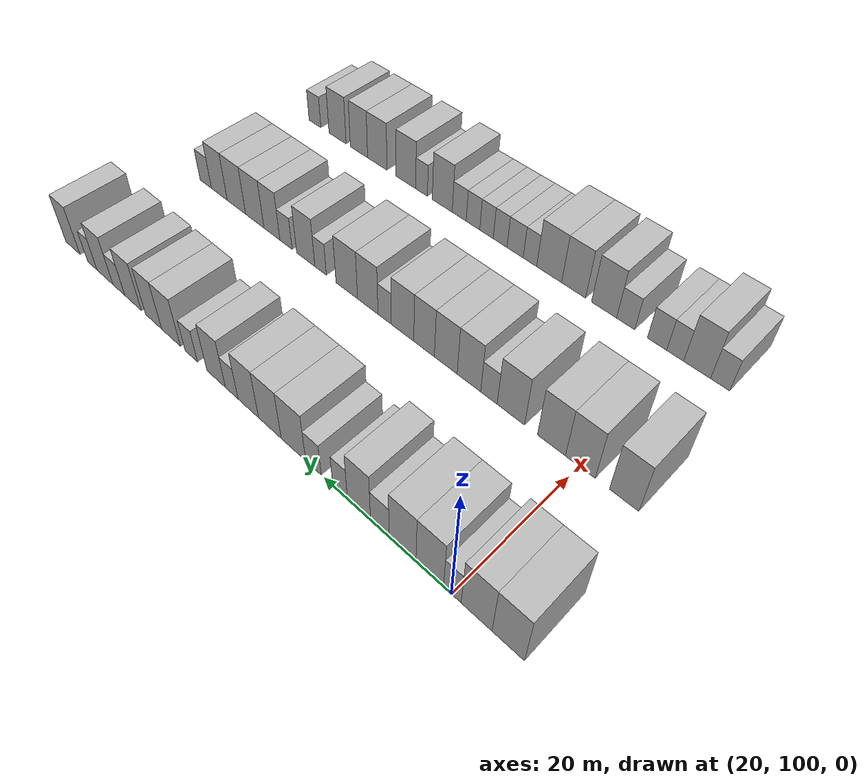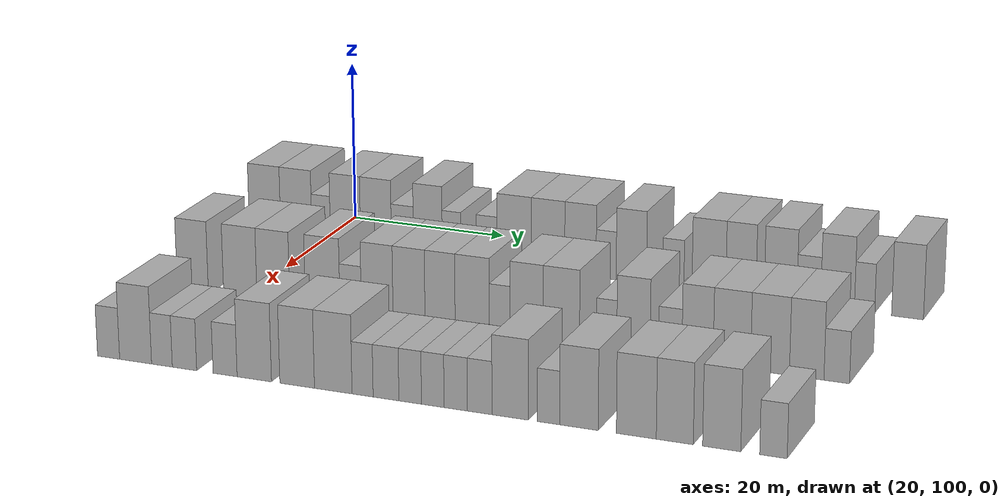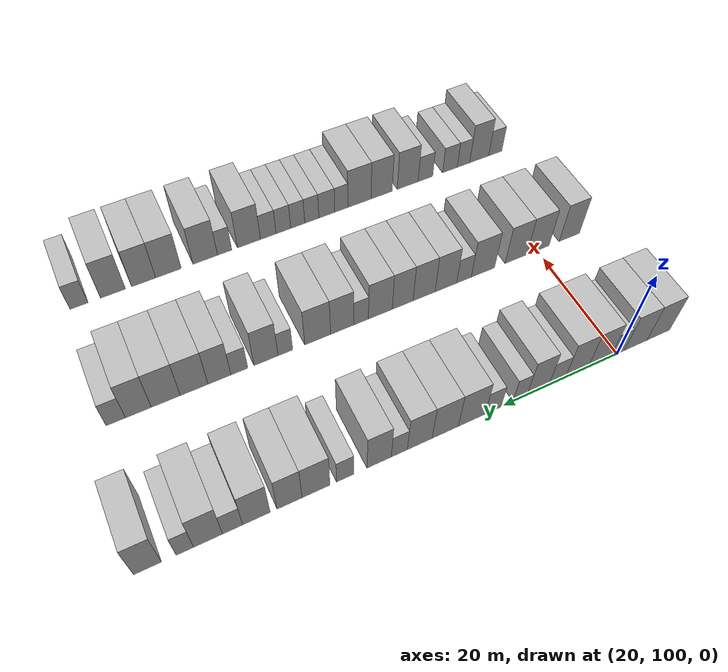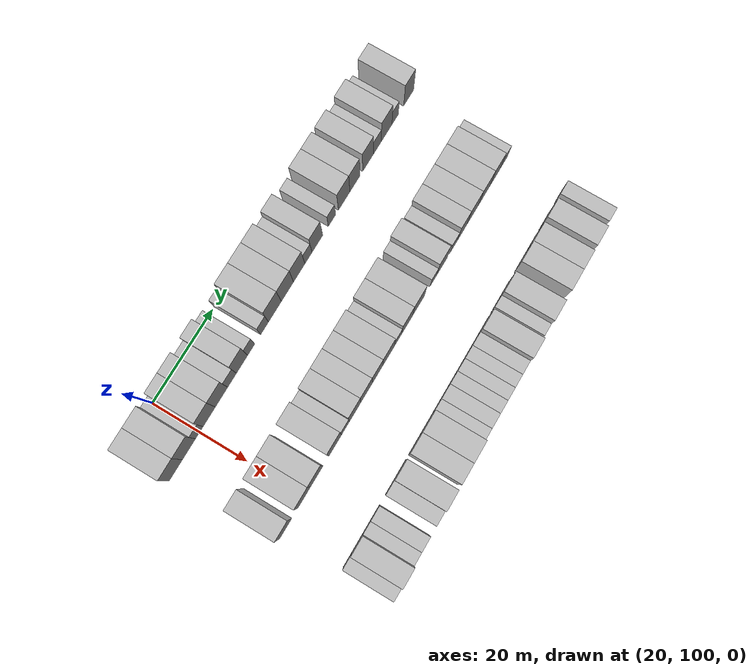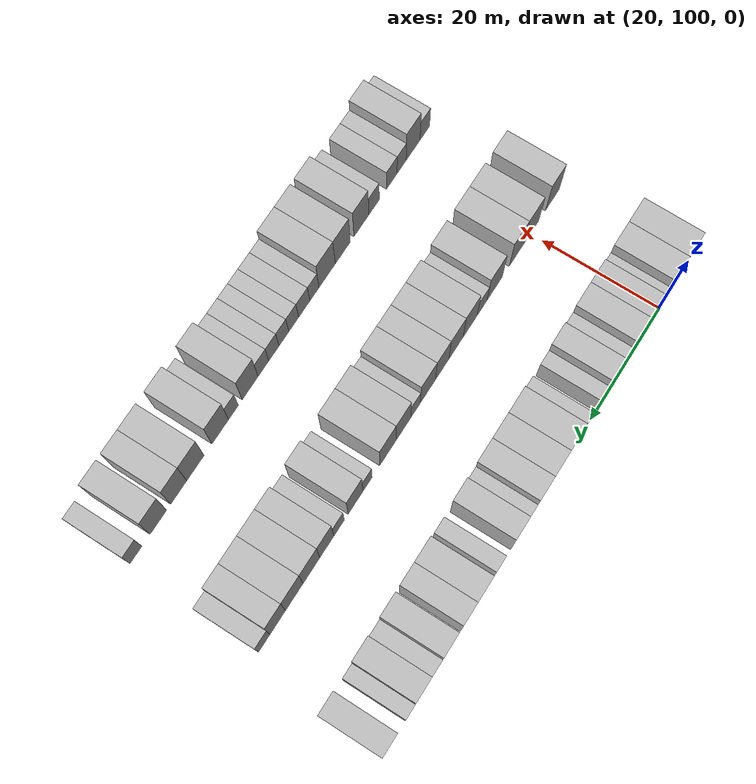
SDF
<sdf version="1.6">
 <world name="default">
  <model name="building_82">
   <static>1</static>
   <pose>25.0000 92.2709 0 0.000000 0.000000 0.000000</pose>
   <link name="link">
    <pose>0 0 4.50 0 0 0</pose>
    <collision name="collision"><geometry><box><size>10.0000 4.3029 9.0000</size></box></geometry></collision>
    <visual name="visual">
     <cast_shadows>0</cast_shadows>
     <geometry><box><size>10.0000 4.3029 9.0000</size></box></geometry>
     <material>
      <script>
       <uri>model://HANNAS_wall/materials/scripts</uri>
       <uri>model://HANNAS_wall/materials/textures</uri>
       <name>vrc/HANNAS_wall</name>
      </script>
     </material>
    </visual>
   </link>
  </model>
  <model name="building_83">
   <static>1</static>
   <pose>25.0000 96.5483 0 0.000000 0.000000 0.000000</pose>
   <link name="link">
    <pose>0 0 4.50 0 0 0</pose>
    <collision name="collision"><geometry><box><size>10.0000 4.2518 9.0000</size></box></geometry></collision>
    <visual name="visual">
     <cast_shadows>0</cast_shadows>
     <geometry><box><size>10.0000 4.2518 9.0000</size></box></geometry>
     <material>
      <script>
       <uri>model://HANNAS_wall/materials/scripts</uri>
       <uri>model://HANNAS_wall/materials/textures</uri>
       <name>vrc/HANNAS_wall</name>
      </script>
     </material>
    </visual>
   </link>
  </model>
  <model name="building_84">
   <static>1</static>
   <pose>25.0000 99.9301 0 0.000000 0.000000 0.000000</pose>
   <link name="link">
    <pose>0 0 3.00 0 0 0</pose>
    <collision name="collision"><geometry><box><size>10.0000 2.5117 6.0000</size></box></geometry></collision>
    <visual name="visual">
     <cast_shadows>0</cast_shadows>
     <geometry><box><size>10.0000 2.5117 6.0000</size></box></geometry>
     <material>
      <script>
       <uri>model://HANNAS_wall/materials/scripts</uri>
       <uri>model://HANNAS_wall/materials/textures</uri>
       <name>vrc/HANNAS_wall</name>
      </script>
     </material>
    </visual>
   </link>
  </model>
  <model name="building_85">
   <static>1</static>
   <pose>25.0000 103.2158 0 0.000000 0.000000 0.000000</pose>
   <link name="link">
    <pose>0 0 4.50 0 0 0</pose>
    <collision name="collision"><geometry><box><size>10.0000 4.0597 9.0000</size></box></geometry></collision>
    <visual name="visual">
     <cast_shadows>0</cast_shadows>
     <geometry><box><size>10.0000 4.0597 9.0000</size></box></geometry>
     <material>
      <script>
       <uri>model://HANNAS_wall/materials/scripts</uri>
       <uri>model://HANNAS_wall/materials/textures</uri>
       <name>vrc/HANNAS_wall</name>
      </script>
     </material>
    </visual>
   </link>
  </model>
  <model name="building_86">
   <static>1</static>
   <pose>25.0000 107.3043 0 0.000000 0.000000 0.000000</pose>
   <link name="link">
    <pose>0 0 4.50 0 0 0</pose>
    <collision name="collision"><geometry><box><size>10.0000 4.1173 9.0000</size></box></geometry></collision>
    <visual name="visual">
     <cast_shadows>0</cast_shadows>
     <geometry><box><size>10.0000 4.1173 9.0000</size></box></geometry>
     <material>
      <script>
       <uri>model://HANNAS_wall/materials/scripts</uri>
       <uri>model://HANNAS_wall/materials/textures</uri>
       <name>vrc/HANNAS_wall</name>
      </script>
     </material>
    </visual>
   </link>
  </model>
  <model name="building_87">
   <static>1</static>
   <pose>25.0000 110.8285 0 0.000000 0.000000 0.000000</pose>
   <link name="link">
    <pose>0 0 3.00 0 0 0</pose>
    <collision name="collision"><geometry><box><size>10.0000 2.9312 6.0000</size></box></geometry></collision>
    <visual name="visual">
     <cast_shadows>0</cast_shadows>
     <geometry><box><size>10.0000 2.9312 6.0000</size></box></geometry>
     <material>
      <script>
       <uri>model://HANNAS_wall/materials/scripts</uri>
       <uri>model://HANNAS_wall/materials/textures</uri>
       <name>vrc/HANNAS_wall</name>
      </script>
     </material>
    </visual>
   </link>
  </model>
  <model name="building_88">
   <static>1</static>
   <pose>25.0000 114.1880 0 0.000000 0.000000 0.000000</pose>
   <link name="link">
    <pose>0 0 4.50 0 0 0</pose>
    <collision name="collision"><geometry><box><size>10.0000 3.7878 9.0000</size></box></geometry></collision>
    <visual name="visual">
     <cast_shadows>0</cast_shadows>
     <geometry><box><size>10.0000 3.7878 9.0000</size></box></geometry>
     <material>
      <script>
       <uri>model://HANNAS_wall/materials/scripts</uri>
       <uri>model://HANNAS_wall/materials/textures</uri>
       <name>vrc/HANNAS_wall</name>
      </script>
     </material>
    </visual>
   </link>
  </model>
  <model name="building_89">
   <static>1</static>
   <pose>25.0000 117.3013 0 0.000000 0.000000 0.000000</pose>
   <link name="link">
    <pose>0 0 3.00 0 0 0</pose>
    <collision name="collision"><geometry><box><size>10.0000 2.4388 6.0000</size></box></geometry></collision>
    <visual name="visual">
     <cast_shadows>0</cast_shadows>
     <geometry><box><size>10.0000 2.4388 6.0000</size></box></geometry>
     <material>
      <script>
       <uri>model://HANNAS_wall/materials/scripts</uri>
       <uri>model://HANNAS_wall/materials/textures</uri>
       <name>vrc/HANNAS_wall</name>
      </script>
     </material>
    </visual>
   </link>
  </model>
  <model name="building_90">
   <static>1</static>
   <pose>25.0000 121.8705 0 0.000000 0.000000 0.000000</pose>
   <link name="link">
    <pose>0 0 3.00 0 0 0</pose>
    <collision name="collision"><geometry><box><size>10.0000 2.6997 6.0000</size></box></geometry></collision>
    <visual name="visual">
     <cast_shadows>0</cast_shadows>
     <geometry><box><size>10.0000 2.6997 6.0000</size></box></geometry>
     <material>
      <script>
       <uri>model://HANNAS_wall/materials/scripts</uri>
       <uri>model://HANNAS_wall/materials/textures</uri>
       <name>vrc/HANNAS_wall</name>
      </script>
     </material>
    </visual>
   </link>
  </model>
  <model name="building_91">
   <static>1</static>
   <pose>25.0000 125.4389 0 0.000000 0.000000 0.000000</pose>
   <link name="link">
    <pose>0 0 4.50 0 0 0</pose>
    <collision name="collision"><geometry><box><size>10.0000 4.4371 9.0000</size></box></geometry></collision>
    <visual name="visual">
     <cast_shadows>0</cast_shadows>
     <geometry><box><size>10.0000 4.4371 9.0000</size></box></geometry>
     <material>
      <script>
       <uri>model://HANNAS_wall/materials/scripts</uri>
       <uri>model://HANNAS_wall/materials/textures</uri>
       <name>vrc/HANNAS_wall</name>
      </script>
     </material>
    </visual>
   </link>
  </model>
  <model name="building_92">
   <static>1</static>
   <pose>25.0000 129.7888 0 0.000000 0.000000 0.000000</pose>
   <link name="link">
    <pose>0 0 4.50 0 0 0</pose>
    <collision name="collision"><geometry><box><size>10.0000 4.2628 9.0000</size></box></geometry></collision>
    <visual name="visual">
     <cast_shadows>0</cast_shadows>
     <geometry><box><size>10.0000 4.2628 9.0000</size></box></geometry>
     <material>
      <script>
       <uri>model://HANNAS_wall/materials/scripts</uri>
       <uri>model://HANNAS_wall/materials/textures</uri>
       <name>vrc/HANNAS_wall</name>
      </script>
     </material>
    </visual>
   </link>
  </model>
  <model name="building_93">
   <static>1</static>
   <pose>25.0000 133.9103 0 0.000000 0.000000 0.000000</pose>
   <link name="link">
    <pose>0 0 4.50 0 0 0</pose>
    <collision name="collision"><geometry><box><size>10.0000 3.9802 9.0000</size></box></geometry></collision>
    <visual name="visual">
     <cast_shadows>0</cast_shadows>
     <geometry><box><size>10.0000 3.9802 9.0000</size></box></geometry>
     <material>
      <script>
       <uri>model://HANNAS_wall/materials/scripts</uri>
       <uri>model://HANNAS_wall/materials/textures</uri>
       <name>vrc/HANNAS_wall</name>
      </script>
     </material>
    </visual>
   </link>
  </model>
  <model name="building_94">
   <static>1</static>
   <pose>25.0000 137.1677 0 0.000000 0.000000 0.000000</pose>
   <link name="link">
    <pose>0 0 3.00 0 0 0</pose>
    <collision name="collision"><geometry><box><size>10.0000 2.5347 6.0000</size></box></geometry></collision>
    <visual name="visual">
     <cast_shadows>0</cast_shadows>
     <geometry><box><size>10.0000 2.5347 6.0000</size></box></geometry>
     <material>
      <script>
       <uri>model://HANNAS_wall/materials/scripts</uri>
       <uri>model://HANNAS_wall/materials/textures</uri>
       <name>vrc/HANNAS_wall</name>
      </script>
     </material>
    </visual>
   </link>
  </model>
  <model name="building_95">
   <static>1</static>
   <pose>25.0000 140.3311 0 0.000000 0.000000 0.000000</pose>
   <link name="link">
    <pose>0 0 4.50 0 0 0</pose>
    <collision name="collision"><geometry><box><size>10.0000 3.7921 9.0000</size></box></geometry></collision>
    <visual name="visual">
     <cast_shadows>0</cast_shadows>
     <geometry><box><size>10.0000 3.7921 9.0000</size></box></geometry>
     <material>
      <script>
       <uri>model://HANNAS_wall/materials/scripts</uri>
       <uri>model://HANNAS_wall/materials/textures</uri>
       <name>vrc/HANNAS_wall</name>
      </script>
     </material>
    </visual>
   </link>
  </model>
  <model name="building_96">
   <static>1</static>
   <pose>25.0000 145.5529 0 0.000000 0.000000 0.000000</pose>
   <link name="link">
    <pose>0 0 3.00 0 0 0</pose>
    <collision name="collision"><geometry><box><size>10.0000 2.6515 6.0000</size></box></geometry></collision>
    <visual name="visual">
     <cast_shadows>0</cast_shadows>
     <geometry><box><size>10.0000 2.6515 6.0000</size></box></geometry>
     <material>
      <script>
       <uri>model://HANNAS_wall/materials/scripts</uri>
       <uri>model://HANNAS_wall/materials/textures</uri>
       <name>vrc/HANNAS_wall</name>
      </script>
     </material>
    </visual>
   </link>
  </model>
  <model name="building_97">
   <static>1</static>
   <pose>25.0000 149.9523 0 0.000000 0.000000 0.000000</pose>
   <link name="link">
    <pose>0 0 4.50 0 0 0</pose>
    <collision name="collision"><geometry><box><size>10.0000 4.1472 9.0000</size></box></geometry></collision>
    <visual name="visual">
     <cast_shadows>0</cast_shadows>
     <geometry><box><size>10.0000 4.1472 9.0000</size></box></geometry>
     <material>
      <script>
       <uri>model://HANNAS_wall/materials/scripts</uri>
       <uri>model://HANNAS_wall/materials/textures</uri>
       <name>vrc/HANNAS_wall</name>
      </script>
     </material>
    </visual>
   </link>
  </model>
  <model name="building_98">
   <static>1</static>
   <pose>25.0000 153.8676 0 0.000000 0.000000 0.000000</pose>
   <link name="link">
    <pose>0 0 4.50 0 0 0</pose>
    <collision name="collision"><geometry><box><size>10.0000 3.6835 9.0000</size></box></geometry></collision>
    <visual name="visual">
     <cast_shadows>0</cast_shadows>
     <geometry><box><size>10.0000 3.6835 9.0000</size></box></geometry>
     <material>
      <script>
       <uri>model://HANNAS_wall/materials/scripts</uri>
       <uri>model://HANNAS_wall/materials/textures</uri>
       <name>vrc/HANNAS_wall</name>
      </script>
     </material>
    </visual>
   </link>
  </model>
  <model name="building_99">
   <static>1</static>
   <pose>25.0000 158.6853 0 0.000000 0.000000 0.000000</pose>
   <link name="link">
    <pose>0 0 4.50 0 0 0</pose>
    <collision name="collision"><geometry><box><size>10.0000 3.9519 9.0000</size></box></geometry></collision>
    <visual name="visual">
     <cast_shadows>0</cast_shadows>
     <geometry><box><size>10.0000 3.9519 9.0000</size></box></geometry>
     <material>
      <script>
       <uri>model://HANNAS_wall/materials/scripts</uri>
       <uri>model://HANNAS_wall/materials/textures</uri>
       <name>vrc/HANNAS_wall</name>
      </script>
     </material>
    </visual>
   </link>
  </model>
  <model name="building_100">
   <static>1</static>
   <pose>25.0000 162.0888 0 0.000000 0.000000 0.000000</pose>
   <link name="link">
    <pose>0 0 3.00 0 0 0</pose>
    <collision name="collision"><geometry><box><size>10.0000 2.8550 6.0000</size></box></geometry></collision>
    <visual name="visual">
     <cast_shadows>0</cast_shadows>
     <geometry><box><size>10.0000 2.8550 6.0000</size></box></geometry>
     <material>
      <script>
       <uri>model://HANNAS_wall/materials/scripts</uri>
       <uri>model://HANNAS_wall/materials/textures</uri>
       <name>vrc/HANNAS_wall</name>
      </script>
     </material>
    </visual>
   </link>
  </model>
  <model name="building_101">
   <static>1</static>
   <pose>25.0000 165.5274 0 0.000000 0.000000 0.000000</pose>
   <link name="link">
    <pose>0 0 4.50 0 0 0</pose>
    <collision name="collision"><geometry><box><size>10.0000 4.0222 9.0000</size></box></geometry></collision>
    <visual name="visual">
     <cast_shadows>0</cast_shadows>
     <geometry><box><size>10.0000 4.0222 9.0000</size></box></geometry>
     <material>
      <script>
       <uri>model://HANNAS_wall/materials/scripts</uri>
       <uri>model://HANNAS_wall/materials/textures</uri>
       <name>vrc/HANNAS_wall</name>
      </script>
     </material>
    </visual>
   </link>
  </model>
  <model name="building_102">
   <static>1</static>
   <pose>25.0000 168.7396 0 0.000000 0.000000 0.000000</pose>
   <link name="link">
    <pose>0 0 3.00 0 0 0</pose>
    <collision name="collision"><geometry><box><size>10.0000 2.4022 6.0000</size></box></geometry></collision>
    <visual name="visual">
     <cast_shadows>0</cast_shadows>
     <geometry><box><size>10.0000 2.4022 6.0000</size></box></geometry>
     <material>
      <script>
       <uri>model://HANNAS_wall/materials/scripts</uri>
       <uri>model://HANNAS_wall/materials/textures</uri>
       <name>vrc/HANNAS_wall</name>
      </script>
     </material>
    </visual>
   </link>
  </model>
  <model name="building_103">
   <static>1</static>
   <pose>25.0000 173.8094 0 0.000000 0.000000 0.000000</pose>
   <link name="link">
    <pose>0 0 4.50 0 0 0</pose>
    <collision name="collision"><geometry><box><size>10.0000 3.7375 9.0000</size></box></geometry></collision>
    <visual name="visual">
     <cast_shadows>0</cast_shadows>
     <geometry><box><size>10.0000 3.7375 9.0000</size></box></geometry>
     <material>
      <script>
       <uri>model://HANNAS_wall/materials/scripts</uri>
       <uri>model://HANNAS_wall/materials/textures</uri>
       <name>vrc/HANNAS_wall</name>
      </script>
     </material>
    </visual>
   </link>
  </model>
  <model name="building_204">
   <static>1</static>
   <pose>47.0000 93.6602 0 0.000000 0.000000 0.000000</pose>
   <link name="link">
    <pose>0 0 4.50 0 0 0</pose>
    <collision name="collision"><geometry><box><size>10.0000 4.0548 9.0000</size></box></geometry></collision>
    <visual name="visual">
     <cast_shadows>0</cast_shadows>
     <geometry><box><size>10.0000 4.0548 9.0000</size></box></geometry>
     <material>
      <script>
       <uri>model://HANNAS_wall/materials/scripts</uri>
       <uri>model://HANNAS_wall/materials/textures</uri>
       <name>vrc/HANNAS_wall</name>
      </script>
     </material>
    </visual>
   </link>
  </model>
  <model name="building_205">
   <static>1</static>
   <pose>47.0000 99.8493 0 0.000000 0.000000 0.000000</pose>
   <link name="link">
    <pose>0 0 4.50 0 0 0</pose>
    <collision name="collision"><geometry><box><size>10.0000 4.3233 9.0000</size></box></geometry></collision>
    <visual name="visual">
     <cast_shadows>0</cast_shadows>
     <geometry><box><size>10.0000 4.3233 9.0000</size></box></geometry>
     <material>
      <script>
       <uri>model://HANNAS_wall/materials/scripts</uri>
       <uri>model://HANNAS_wall/materials/textures</uri>
       <name>vrc/HANNAS_wall</name>
      </script>
     </material>
    </visual>
   </link>
  </model>
  <model name="building_206">
   <static>1</static>
   <pose>47.0000 104.1126 0 0.000000 0.000000 0.000000</pose>
   <link name="link">
    <pose>0 0 4.50 0 0 0</pose>
    <collision name="collision"><geometry><box><size>10.0000 4.2034 9.0000</size></box></geometry></collision>
    <visual name="visual">
     <cast_shadows>0</cast_shadows>
     <geometry><box><size>10.0000 4.2034 9.0000</size></box></geometry>
     <material>
      <script>
       <uri>model://HANNAS_wall/materials/scripts</uri>
       <uri>model://HANNAS_wall/materials/textures</uri>
       <name>vrc/HANNAS_wall</name>
      </script>
     </material>
    </visual>
   </link>
  </model>
  <model name="building_207">
   <static>1</static>
   <pose>47.0000 110.4031 0 0.000000 0.000000 0.000000</pose>
   <link name="link">
    <pose>0 0 4.50 0 0 0</pose>
    <collision name="collision"><geometry><box><size>10.0000 4.3776 9.0000</size></box></geometry></collision>
    <visual name="visual">
     <cast_shadows>0</cast_shadows>
     <geometry><box><size>10.0000 4.3776 9.0000</size></box></geometry>
     <material>
      <script>
       <uri>model://HANNAS_wall/materials/scripts</uri>
       <uri>model://HANNAS_wall/materials/textures</uri>
       <name>vrc/HANNAS_wall</name>
      </script>
     </material>
    </visual>
   </link>
  </model>
  <model name="building_208">
   <static>1</static>
   <pose>47.0000 113.9424 0 0.000000 0.000000 0.000000</pose>
   <link name="link">
    <pose>0 0 3.00 0 0 0</pose>
    <collision name="collision"><geometry><box><size>10.0000 2.7010 6.0000</size></box></geometry></collision>
    <visual name="visual">
     <cast_shadows>0</cast_shadows>
     <geometry><box><size>10.0000 2.7010 6.0000</size></box></geometry>
     <material>
      <script>
       <uri>model://HANNAS_wall/materials/scripts</uri>
       <uri>model://HANNAS_wall/materials/textures</uri>
       <name>vrc/HANNAS_wall</name>
      </script>
     </material>
    </visual>
   </link>
  </model>
  <model name="building_209">
   <static>1</static>
   <pose>47.0000 117.2734 0 0.000000 0.000000 0.000000</pose>
   <link name="link">
    <pose>0 0 4.50 0 0 0</pose>
    <collision name="collision"><geometry><box><size>10.0000 3.9609 9.0000</size></box></geometry></collision>
    <visual name="visual">
     <cast_shadows>0</cast_shadows>
     <geometry><box><size>10.0000 3.9609 9.0000</size></box></geometry>
     <material>
      <script>
       <uri>model://HANNAS_wall/materials/scripts</uri>
       <uri>model://HANNAS_wall/materials/textures</uri>
       <name>vrc/HANNAS_wall</name>
      </script>
     </material>
    </visual>
   </link>
  </model>
  <model name="building_210">
   <static>1</static>
   <pose>47.0000 121.2364 0 0.000000 0.000000 0.000000</pose>
   <link name="link">
    <pose>0 0 4.50 0 0 0</pose>
    <collision name="collision"><geometry><box><size>10.0000 3.9651 9.0000</size></box></geometry></collision>
    <visual name="visual">
     <cast_shadows>0</cast_shadows>
     <geometry><box><size>10.0000 3.9651 9.0000</size></box></geometry>
     <material>
      <script>
       <uri>model://HANNAS_wall/materials/scripts</uri>
       <uri>model://HANNAS_wall/materials/textures</uri>
       <name>vrc/HANNAS_wall</name>
      </script>
     </material>
    </visual>
   </link>
  </model>
  <model name="building_211">
   <static>1</static>
   <pose>47.0000 125.0713 0 0.000000 0.000000 0.000000</pose>
   <link name="link">
    <pose>0 0 4.50 0 0 0</pose>
    <collision name="collision"><geometry><box><size>10.0000 3.7047 9.0000</size></box></geometry></collision>
    <visual name="visual">
     <cast_shadows>0</cast_shadows>
     <geometry><box><size>10.0000 3.7047 9.0000</size></box></geometry>
     <material>
      <script>
       <uri>model://HANNAS_wall/materials/scripts</uri>
       <uri>model://HANNAS_wall/materials/textures</uri>
       <name>vrc/HANNAS_wall</name>
      </script>
     </material>
    </visual>
   </link>
  </model>
  <model name="building_212">
   <static>1</static>
   <pose>47.0000 129.0165 0 0.000000 0.000000 0.000000</pose>
   <link name="link">
    <pose>0 0 4.50 0 0 0</pose>
    <collision name="collision"><geometry><box><size>10.0000 4.1857 9.0000</size></box></geometry></collision>
    <visual name="visual">
     <cast_shadows>0</cast_shadows>
     <geometry><box><size>10.0000 4.1857 9.0000</size></box></geometry>
     <material>
      <script>
       <uri>model://HANNAS_wall/materials/scripts</uri>
       <uri>model://HANNAS_wall/materials/textures</uri>
       <name>vrc/HANNAS_wall</name>
      </script>
     </material>
    </visual>
   </link>
  </model>
  <model name="building_213">
   <static>1</static>
   <pose>47.0000 132.3645 0 0.000000 0.000000 0.000000</pose>
   <link name="link">
    <pose>0 0 3.00 0 0 0</pose>
    <collision name="collision"><geometry><box><size>10.0000 2.5104 6.0000</size></box></geometry></collision>
    <visual name="visual">
     <cast_shadows>0</cast_shadows>
     <geometry><box><size>10.0000 2.5104 6.0000</size></box></geometry>
     <material>
      <script>
       <uri>model://HANNAS_wall/materials/scripts</uri>
       <uri>model://HANNAS_wall/materials/textures</uri>
       <name>vrc/HANNAS_wall</name>
      </script>
     </material>
    </visual>
   </link>
  </model>
  <model name="building_214">
   <static>1</static>
   <pose>47.0000 135.6047 0 0.000000 0.000000 0.000000</pose>
   <link name="link">
    <pose>0 0 4.50 0 0 0</pose>
    <collision name="collision"><geometry><box><size>10.0000 3.9700 9.0000</size></box></geometry></collision>
    <visual name="visual">
     <cast_shadows>0</cast_shadows>
     <geometry><box><size>10.0000 3.9700 9.0000</size></box></geometry>
     <material>
      <script>
       <uri>model://HANNAS_wall/materials/scripts</uri>
       <uri>model://HANNAS_wall/materials/textures</uri>
       <name>vrc/HANNAS_wall</name>
      </script>
     </material>
    </visual>
   </link>
  </model>
  <model name="building_215">
   <static>1</static>
   <pose>47.0000 139.7624 0 0.000000 0.000000 0.000000</pose>
   <link name="link">
    <pose>0 0 4.50 0 0 0</pose>
    <collision name="collision"><geometry><box><size>10.0000 4.3452 9.0000</size></box></geometry></collision>
    <visual name="visual">
     <cast_shadows>0</cast_shadows>
     <geometry><box><size>10.0000 4.3452 9.0000</size></box></geometry>
     <material>
      <script>
       <uri>model://HANNAS_wall/materials/scripts</uri>
       <uri>model://HANNAS_wall/materials/textures</uri>
       <name>vrc/HANNAS_wall</name>
      </script>
     </material>
    </visual>
   </link>
  </model>
  <model name="building_216">
   <static>1</static>
   <pose>47.0000 145.1361 0 0.000000 0.000000 0.000000</pose>
   <link name="link">
    <pose>0 0 3.00 0 0 0</pose>
    <collision name="collision"><geometry><box><size>10.0000 2.4023 6.0000</size></box></geometry></collision>
    <visual name="visual">
     <cast_shadows>0</cast_shadows>
     <geometry><box><size>10.0000 2.4023 6.0000</size></box></geometry>
     <material>
      <script>
       <uri>model://HANNAS_wall/materials/scripts</uri>
       <uri>model://HANNAS_wall/materials/textures</uri>
       <name>vrc/HANNAS_wall</name>
      </script>
     </material>
    </visual>
   </link>
  </model>
  <model name="building_217">
   <static>1</static>
   <pose>47.0000 148.2881 0 0.000000 0.000000 0.000000</pose>
   <link name="link">
    <pose>0 0 4.50 0 0 0</pose>
    <collision name="collision"><geometry><box><size>10.0000 3.9017 9.0000</size></box></geometry></collision>
    <visual name="visual">
     <cast_shadows>0</cast_shadows>
     <geometry><box><size>10.0000 3.9017 9.0000</size></box></geometry>
     <material>
      <script>
       <uri>model://HANNAS_wall/materials/scripts</uri>
       <uri>model://HANNAS_wall/materials/textures</uri>
       <name>vrc/HANNAS_wall</name>
      </script>
     </material>
    </visual>
   </link>
  </model>
  <model name="building_218">
   <static>1</static>
   <pose>47.0000 152.5871 0 0.000000 0.000000 0.000000</pose>
   <link name="link">
    <pose>0 0 3.00 0 0 0</pose>
    <collision name="collision"><geometry><box><size>10.0000 2.6964 6.0000</size></box></geometry></collision>
    <visual name="visual">
     <cast_shadows>0</cast_shadows>
     <geometry><box><size>10.0000 2.6964 6.0000</size></box></geometry>
     <material>
      <script>
       <uri>model://HANNAS_wall/materials/scripts</uri>
       <uri>model://HANNAS_wall/materials/textures</uri>
       <name>vrc/HANNAS_wall</name>
      </script>
     </material>
    </visual>
   </link>
  </model>
  <model name="building_219">
   <static>1</static>
   <pose>47.0000 155.7410 0 0.000000 0.000000 0.000000</pose>
   <link name="link">
    <pose>0 0 4.50 0 0 0</pose>
    <collision name="collision"><geometry><box><size>10.0000 3.6115 9.0000</size></box></geometry></collision>
    <visual name="visual">
     <cast_shadows>0</cast_shadows>
     <geometry><box><size>10.0000 3.6115 9.0000</size></box></geometry>
     <material>
      <script>
       <uri>model://HANNAS_wall/materials/scripts</uri>
       <uri>model://HANNAS_wall/materials/textures</uri>
       <name>vrc/HANNAS_wall</name>
      </script>
     </material>
    </visual>
   </link>
  </model>
  <model name="building_220">
   <static>1</static>
   <pose>47.0000 159.6880 0 0.000000 0.000000 0.000000</pose>
   <link name="link">
    <pose>0 0 4.50 0 0 0</pose>
    <collision name="collision"><geometry><box><size>10.0000 4.2825 9.0000</size></box></geometry></collision>
    <visual name="visual">
     <cast_shadows>0</cast_shadows>
     <geometry><box><size>10.0000 4.2825 9.0000</size></box></geometry>
     <material>
      <script>
       <uri>model://HANNAS_wall/materials/scripts</uri>
       <uri>model://HANNAS_wall/materials/textures</uri>
       <name>vrc/HANNAS_wall</name>
      </script>
     </material>
    </visual>
   </link>
  </model>
  <model name="building_221">
   <static>1</static>
   <pose>47.0000 164.0348 0 0.000000 0.000000 0.000000</pose>
   <link name="link">
    <pose>0 0 4.50 0 0 0</pose>
    <collision name="collision"><geometry><box><size>10.0000 4.4110 9.0000</size></box></geometry></collision>
    <visual name="visual">
     <cast_shadows>0</cast_shadows>
     <geometry><box><size>10.0000 4.4110 9.0000</size></box></geometry>
     <material>
      <script>
       <uri>model://HANNAS_wall/materials/scripts</uri>
       <uri>model://HANNAS_wall/materials/textures</uri>
       <name>vrc/HANNAS_wall</name>
      </script>
     </material>
    </visual>
   </link>
  </model>
  <model name="building_222">
   <static>1</static>
   <pose>47.0000 168.1836 0 0.000000 0.000000 0.000000</pose>
   <link name="link">
    <pose>0 0 4.50 0 0 0</pose>
    <collision name="collision"><geometry><box><size>10.0000 3.8867 9.0000</size></box></geometry></collision>
    <visual name="visual">
     <cast_shadows>0</cast_shadows>
     <geometry><box><size>10.0000 3.8867 9.0000</size></box></geometry>
     <material>
      <script>
       <uri>model://HANNAS_wall/materials/scripts</uri>
       <uri>model://HANNAS_wall/materials/textures</uri>
       <name>vrc/HANNAS_wall</name>
      </script>
     </material>
    </visual>
   </link>
  </model>
  <model name="building_223">
   <static>1</static>
   <pose>47.0000 171.5571 0 0.000000 0.000000 0.000000</pose>
   <link name="link">
    <pose>0 0 3.00 0 0 0</pose>
    <collision name="collision"><geometry><box><size>10.0000 2.8604 6.0000</size></box></geometry></collision>
    <visual name="visual">
     <cast_shadows>0</cast_shadows>
     <geometry><box><size>10.0000 2.8604 6.0000</size></box></geometry>
     <material>
      <script>
       <uri>model://HANNAS_wall/materials/scripts</uri>
       <uri>model://HANNAS_wall/materials/textures</uri>
       <name>vrc/HANNAS_wall</name>
      </script>
     </material>
    </visual>
   </link>
  </model>
  <model name="building_337">
   <static>1</static>
   <pose>69.0000 94.6516 0 0.000000 0.000000 0.000000</pose>
   <link name="link">
    <pose>0 0 3.00 0 0 0</pose>
    <collision name="collision"><geometry><box><size>10.0000 2.7545 6.0000</size></box></geometry></collision>
    <visual name="visual">
     <cast_shadows>0</cast_shadows>
     <geometry><box><size>10.0000 2.7545 6.0000</size></box></geometry>
     <material>
      <script>
       <uri>model://HANNAS_wall/materials/scripts</uri>
       <uri>model://HANNAS_wall/materials/textures</uri>
       <name>vrc/HANNAS_wall</name>
      </script>
     </material>
    </visual>
   </link>
  </model>
  <model name="building_338">
   <static>1</static>
   <pose>69.0000 98.0109 0 0.000000 0.000000 0.000000</pose>
   <link name="link">
    <pose>0 0 4.50 0 0 0</pose>
    <collision name="collision"><geometry><box><size>10.0000 3.9641 9.0000</size></box></geometry></collision>
    <visual name="visual">
     <cast_shadows>0</cast_shadows>
     <geometry><box><size>10.0000 3.9641 9.0000</size></box></geometry>
     <material>
      <script>
       <uri>model://HANNAS_wall/materials/scripts</uri>
       <uri>model://HANNAS_wall/materials/textures</uri>
       <name>vrc/HANNAS_wall</name>
      </script>
     </material>
    </visual>
   </link>
  </model>
  <model name="building_339">
   <static>1</static>
   <pose>69.0000 101.2711 0 0.000000 0.000000 0.000000</pose>
   <link name="link">
    <pose>0 0 3.00 0 0 0</pose>
    <collision name="collision"><geometry><box><size>10.0000 2.5563 6.0000</size></box></geometry></collision>
    <visual name="visual">
     <cast_shadows>0</cast_shadows>
     <geometry><box><size>10.0000 2.5563 6.0000</size></box></geometry>
     <material>
      <script>
       <uri>model://HANNAS_wall/materials/scripts</uri>
       <uri>model://HANNAS_wall/materials/textures</uri>
       <name>vrc/HANNAS_wall</name>
      </script>
     </material>
    </visual>
   </link>
  </model>
  <model name="building_340">
   <static>1</static>
   <pose>69.0000 104.0410 0 0.000000 0.000000 0.000000</pose>
   <link name="link">
    <pose>0 0 3.00 0 0 0</pose>
    <collision name="collision"><geometry><box><size>10.0000 2.9836 6.0000</size></box></geometry></collision>
    <visual name="visual">
     <cast_shadows>0</cast_shadows>
     <geometry><box><size>10.0000 2.9836 6.0000</size></box></geometry>
     <material>
      <script>
       <uri>model://HANNAS_wall/materials/scripts</uri>
       <uri>model://HANNAS_wall/materials/textures</uri>
       <name>vrc/HANNAS_wall</name>
      </script>
     </material>
    </visual>
   </link>
  </model>
  <model name="building_341">
   <static>1</static>
   <pose>69.0000 108.9908 0 0.000000 0.000000 0.000000</pose>
   <link name="link">
    <pose>0 0 3.00 0 0 0</pose>
    <collision name="collision"><geometry><box><size>10.0000 2.9160 6.0000</size></box></geometry></collision>
    <visual name="visual">
     <cast_shadows>0</cast_shadows>
     <geometry><box><size>10.0000 2.9160 6.0000</size></box></geometry>
     <material>
      <script>
       <uri>model://HANNAS_wall/materials/scripts</uri>
       <uri>model://HANNAS_wall/materials/textures</uri>
       <name>vrc/HANNAS_wall</name>
      </script>
     </material>
    </visual>
   </link>
  </model>
  <model name="building_342">
   <static>1</static>
   <pose>69.0000 112.5157 0 0.000000 0.000000 0.000000</pose>
   <link name="link">
    <pose>0 0 4.50 0 0 0</pose>
    <collision name="collision"><geometry><box><size>10.0000 4.1337 9.0000</size></box></geometry></collision>
    <visual name="visual">
     <cast_shadows>0</cast_shadows>
     <geometry><box><size>10.0000 4.1337 9.0000</size></box></geometry>
     <material>
      <script>
       <uri>model://HANNAS_wall/materials/scripts</uri>
       <uri>model://HANNAS_wall/materials/textures</uri>
       <name>vrc/HANNAS_wall</name>
      </script>
     </material>
    </visual>
   </link>
  </model>
  <model name="building_343">
   <static>1</static>
   <pose>69.0000 117.6423 0 0.000000 0.000000 0.000000</pose>
   <link name="link">
    <pose>0 0 4.50 0 0 0</pose>
    <collision name="collision"><geometry><box><size>10.0000 4.1196 9.0000</size></box></geometry></collision>
    <visual name="visual">
     <cast_shadows>0</cast_shadows>
     <geometry><box><size>10.0000 4.1196 9.0000</size></box></geometry>
     <material>
      <script>
       <uri>model://HANNAS_wall/materials/scripts</uri>
       <uri>model://HANNAS_wall/materials/textures</uri>
       <name>vrc/HANNAS_wall</name>
      </script>
     </material>
    </visual>
   </link>
  </model>
  <model name="building_344">
   <static>1</static>
   <pose>69.0000 121.9189 0 0.000000 0.000000 0.000000</pose>
   <link name="link">
    <pose>0 0 4.50 0 0 0</pose>
    <collision name="collision"><geometry><box><size>10.0000 4.4335 9.0000</size></box></geometry></collision>
    <visual name="visual">
     <cast_shadows>0</cast_shadows>
     <geometry><box><size>10.0000 4.4335 9.0000</size></box></geometry>
     <material>
      <script>
       <uri>model://HANNAS_wall/materials/scripts</uri>
       <uri>model://HANNAS_wall/materials/textures</uri>
       <name>vrc/HANNAS_wall</name>
      </script>
     </material>
    </visual>
   </link>
  </model>
  <model name="building_345">
   <static>1</static>
   <pose>69.0000 125.3679 0 0.000000 0.000000 0.000000</pose>
   <link name="link">
    <pose>0 0 3.00 0 0 0</pose>
    <collision name="collision"><geometry><box><size>10.0000 2.4647 6.0000</size></box></geometry></collision>
    <visual name="visual">
     <cast_shadows>0</cast_shadows>
     <geometry><box><size>10.0000 2.4647 6.0000</size></box></geometry>
     <material>
      <script>
       <uri>model://HANNAS_wall/materials/scripts</uri>
       <uri>model://HANNAS_wall/materials/textures</uri>
       <name>vrc/HANNAS_wall</name>
      </script>
     </material>
    </visual>
   </link>
  </model>
  <model name="building_346">
   <static>1</static>
   <pose>69.0000 128.0979 0 0.000000 0.000000 0.000000</pose>
   <link name="link">
    <pose>0 0 3.00 0 0 0</pose>
    <collision name="collision"><geometry><box><size>10.0000 2.9952 6.0000</size></box></geometry></collision>
    <visual name="visual">
     <cast_shadows>0</cast_shadows>
     <geometry><box><size>10.0000 2.9952 6.0000</size></box></geometry>
     <material>
      <script>
       <uri>model://HANNAS_wall/materials/scripts</uri>
       <uri>model://HANNAS_wall/materials/textures</uri>
       <name>vrc/HANNAS_wall</name>
      </script>
     </material>
    </visual>
   </link>
  </model>
  <model name="building_347">
   <static>1</static>
   <pose>69.0000 130.9005 0 0.000000 0.000000 0.000000</pose>
   <link name="link">
    <pose>0 0 3.00 0 0 0</pose>
    <collision name="collision"><geometry><box><size>10.0000 2.6101 6.0000</size></box></geometry></collision>
    <visual name="visual">
     <cast_shadows>0</cast_shadows>
     <geometry><box><size>10.0000 2.6101 6.0000</size></box></geometry>
     <material>
      <script>
       <uri>model://HANNAS_wall/materials/scripts</uri>
       <uri>model://HANNAS_wall/materials/textures</uri>
       <name>vrc/HANNAS_wall</name>
      </script>
     </material>
    </visual>
   </link>
  </model>
  <model name="building_348">
   <static>1</static>
   <pose>69.0000 133.5055 0 0.000000 0.000000 0.000000</pose>
   <link name="link">
    <pose>0 0 3.00 0 0 0</pose>
    <collision name="collision"><geometry><box><size>10.0000 2.5999 6.0000</size></box></geometry></collision>
    <visual name="visual">
     <cast_shadows>0</cast_shadows>
     <geometry><box><size>10.0000 2.5999 6.0000</size></box></geometry>
     <material>
      <script>
       <uri>model://HANNAS_wall/materials/scripts</uri>
       <uri>model://HANNAS_wall/materials/textures</uri>
       <name>vrc/HANNAS_wall</name>
      </script>
     </material>
    </visual>
   </link>
  </model>
  <model name="building_349">
   <static>1</static>
   <pose>69.0000 136.1363 0 0.000000 0.000000 0.000000</pose>
   <link name="link">
    <pose>0 0 3.00 0 0 0</pose>
    <collision name="collision"><geometry><box><size>10.0000 2.6617 6.0000</size></box></geometry></collision>
    <visual name="visual">
     <cast_shadows>0</cast_shadows>
     <geometry><box><size>10.0000 2.6617 6.0000</size></box></geometry>
     <material>
      <script>
       <uri>model://HANNAS_wall/materials/scripts</uri>
       <uri>model://HANNAS_wall/materials/textures</uri>
       <name>vrc/HANNAS_wall</name>
      </script>
     </material>
    </visual>
   </link>
  </model>
  <model name="building_350">
   <static>1</static>
   <pose>69.0000 138.8669 0 0.000000 0.000000 0.000000</pose>
   <link name="link">
    <pose>0 0 3.00 0 0 0</pose>
    <collision name="collision"><geometry><box><size>10.0000 2.7993 6.0000</size></box></geometry></collision>
    <visual name="visual">
     <cast_shadows>0</cast_shadows>
     <geometry><box><size>10.0000 2.7993 6.0000</size></box></geometry>
     <material>
      <script>
       <uri>model://HANNAS_wall/materials/scripts</uri>
       <uri>model://HANNAS_wall/materials/textures</uri>
       <name>vrc/HANNAS_wall</name>
      </script>
     </material>
    </visual>
   </link>
  </model>
  <model name="building_351">
   <static>1</static>
   <pose>69.0000 142.3230 0 0.000000 0.000000 0.000000</pose>
   <link name="link">
    <pose>0 0 4.50 0 0 0</pose>
    <collision name="collision"><geometry><box><size>10.0000 4.1131 9.0000</size></box></geometry></collision>
    <visual name="visual">
     <cast_shadows>0</cast_shadows>
     <geometry><box><size>10.0000 4.1131 9.0000</size></box></geometry>
     <material>
      <script>
       <uri>model://HANNAS_wall/materials/scripts</uri>
       <uri>model://HANNAS_wall/materials/textures</uri>
       <name>vrc/HANNAS_wall</name>
      </script>
     </material>
    </visual>
   </link>
  </model>
  <model name="building_352">
   <static>1</static>
   <pose>69.0000 146.6285 0 0.000000 0.000000 0.000000</pose>
   <link name="link">
    <pose>0 0 3.00 0 0 0</pose>
    <collision name="collision"><geometry><box><size>10.0000 2.4978 6.0000</size></box></geometry></collision>
    <visual name="visual">
     <cast_shadows>0</cast_shadows>
     <geometry><box><size>10.0000 2.4978 6.0000</size></box></geometry>
     <material>
      <script>
       <uri>model://HANNAS_wall/materials/scripts</uri>
       <uri>model://HANNAS_wall/materials/textures</uri>
       <name>vrc/HANNAS_wall</name>
      </script>
     </material>
    </visual>
   </link>
  </model>
  <model name="building_353">
   <static>1</static>
   <pose>69.0000 150.0040 0 0.000000 0.000000 0.000000</pose>
   <link name="link">
    <pose>0 0 4.50 0 0 0</pose>
    <collision name="collision"><geometry><box><size>10.0000 4.2532 9.0000</size></box></geometry></collision>
    <visual name="visual">
     <cast_shadows>0</cast_shadows>
     <geometry><box><size>10.0000 4.2532 9.0000</size></box></geometry>
     <material>
      <script>
       <uri>model://HANNAS_wall/materials/scripts</uri>
       <uri>model://HANNAS_wall/materials/textures</uri>
       <name>vrc/HANNAS_wall</name>
      </script>
     </material>
    </visual>
   </link>
  </model>
  <model name="building_354">
   <static>1</static>
   <pose>69.0000 156.3053 0 0.000000 0.000000 0.000000</pose>
   <link name="link">
    <pose>0 0 4.50 0 0 0</pose>
    <collision name="collision"><geometry><box><size>10.0000 4.3493 9.0000</size></box></geometry></collision>
    <visual name="visual">
     <cast_shadows>0</cast_shadows>
     <geometry><box><size>10.0000 4.3493 9.0000</size></box></geometry>
     <material>
      <script>
       <uri>model://HANNAS_wall/materials/scripts</uri>
       <uri>model://HANNAS_wall/materials/textures</uri>
       <name>vrc/HANNAS_wall</name>
      </script>
     </material>
    </visual>
   </link>
  </model>
  <model name="building_355">
   <static>1</static>
   <pose>69.0000 160.4838 0 0.000000 0.000000 0.000000</pose>
   <link name="link">
    <pose>0 0 4.50 0 0 0</pose>
    <collision name="collision"><geometry><box><size>10.0000 4.0077 9.0000</size></box></geometry></collision>
    <visual name="visual">
     <cast_shadows>0</cast_shadows>
     <geometry><box><size>10.0000 4.0077 9.0000</size></box></geometry>
     <material>
      <script>
       <uri>model://HANNAS_wall/materials/scripts</uri>
       <uri>model://HANNAS_wall/materials/textures</uri>
       <name>vrc/HANNAS_wall</name>
      </script>
     </material>
    </visual>
   </link>
  </model>
  <model name="building_356">
   <static>1</static>
   <pose>69.0000 165.5325 0 0.000000 0.000000 0.000000</pose>
   <link name="link">
    <pose>0 0 4.50 0 0 0</pose>
    <collision name="collision"><geometry><box><size>10.0000 4.0898 9.0000</size></box></geometry></collision>
    <visual name="visual">
     <cast_shadows>0</cast_shadows>
     <geometry><box><size>10.0000 4.0898 9.0000</size></box></geometry>
     <material>
      <script>
       <uri>model://HANNAS_wall/materials/scripts</uri>
       <uri>model://HANNAS_wall/materials/textures</uri>
       <name>vrc/HANNAS_wall</name>
      </script>
     </material>
    </visual>
   </link>
  </model>
  <model name="building_357">
   <static>1</static>
   <pose>69.0000 171.0292 0 0.000000 0.000000 0.000000</pose>
   <link name="link">
    <pose>0 0 3.00 0 0 0</pose>
    <collision name="collision"><geometry><box><size>10.0000 2.9036 6.0000</size></box></geometry></collision>
    <visual name="visual">
     <cast_shadows>0</cast_shadows>
     <geometry><box><size>10.0000 2.9036 6.0000</size></box></geometry>
     <material>
      <script>
       <uri>model://HANNAS_wall/materials/scripts</uri>
       <uri>model://HANNAS_wall/materials/textures</uri>
       <name>vrc/HANNAS_wall</name>
      </script>
     </material>
    </visual>
   </link>
  </model>
 </world>
</sdf>
